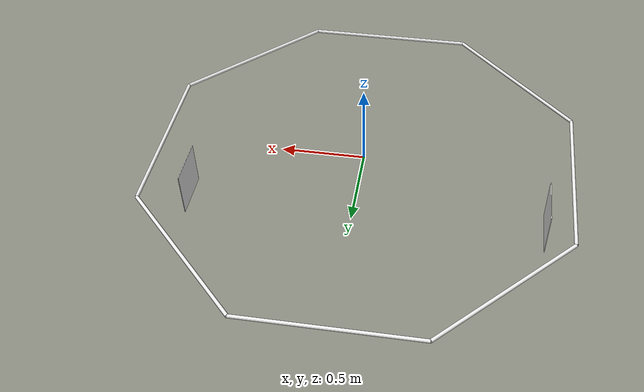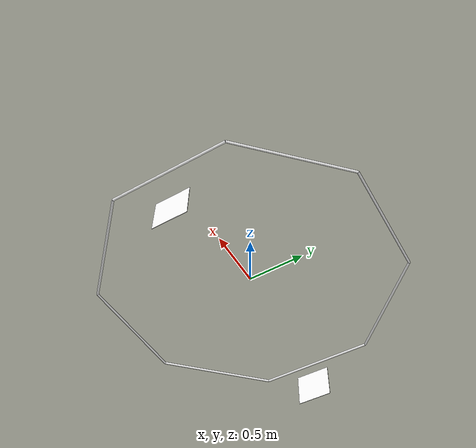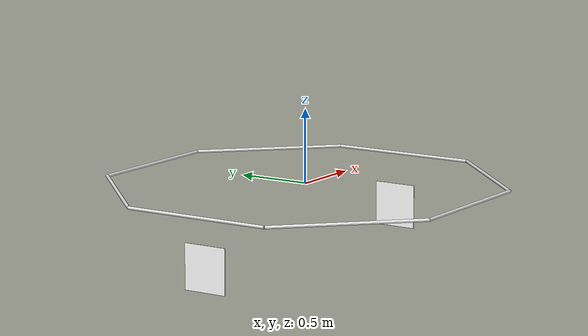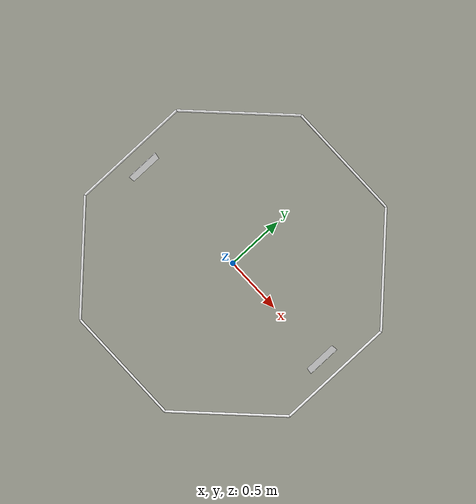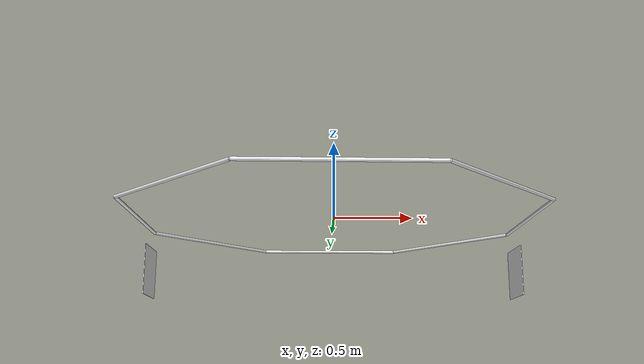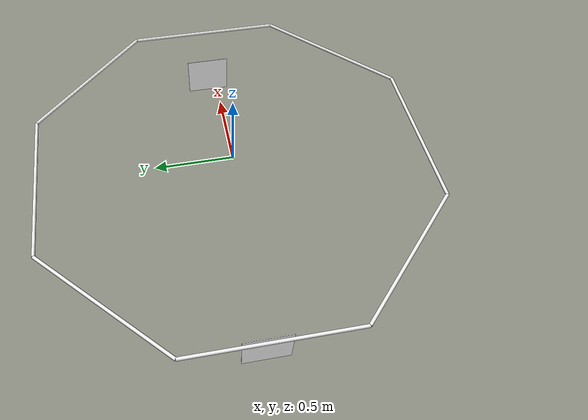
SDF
<?xml version="1.0"?>
<sdf version="1.9">
  <model name="robosub_octagon">
    <static>true</static>
    <plugin filename="gz-sim-label-system" name="gz::sim::systems::Label">
      <label>17</label>
    </plugin>
    <link name="side_0">
      <pose>1.24724 0 0 0 1.5708 1.5708</pose>
      <inertial>
        <pose>0 0 0 0 0 0</pose>
        <mass>1</mass>
        <inertia>
          <ixx>0.0889939</ixx><ixy>0</ixy><ixz>0</ixz>
          <iyy>0.0889939</iyy><iyz>0</iyz>
          <izz>5.5125e-05</izz>
        </inertia>
      </inertial>
      <visual name="side_0_visual">
        <pose>0 0 0 0 0 0</pose>
        <geometry><cylinder><radius>0.0105</radius><length>1.03325</length></cylinder></geometry>
        <material>
          <ambient>0.92 0.92 0.92 1</ambient>
          <diffuse>0.92 0.92 0.92 1</diffuse>
          <specular>0.55 0.55 0.55 1</specular>
          <emissive>0.258 0.258 0.258 1</emissive>
          <pbr>
            <metal>
              <albedo_map>model://robosub_textures/rough_pvc.png</albedo_map>
              <metalness>0.0</metalness>
              <roughness_map>model://robosub_textures/rough_pvc.png</roughness_map>
              <normal_map>model://robosub_textures/norm_pvc.png</normal_map>
            </metal>
          </pbr>
        </material>
      </visual>
    </link>
    <link name="side_1">
      <pose>0.88193 0.88193 0 0 1.5708 2.35619</pose>
      <inertial>
        <pose>0 0 0 0 0 0</pose>
        <mass>1</mass>
        <inertia>
          <ixx>0.0889939</ixx><ixy>0</ixy><ixz>0</ixz>
          <iyy>0.0889939</iyy><iyz>0</iyz>
          <izz>5.5125e-05</izz>
        </inertia>
      </inertial>
      <visual name="side_1_visual">
        <pose>0 0 0 0 0 0</pose>
        <geometry><cylinder><radius>0.0105</radius><length>1.03325</length></cylinder></geometry>
        <material>
          <ambient>0.92 0.92 0.92 1</ambient>
          <diffuse>0.92 0.92 0.92 1</diffuse>
          <specular>0.55 0.55 0.55 1</specular>
          <emissive>0.258 0.258 0.258 1</emissive>
          <pbr>
            <metal>
              <albedo_map>model://robosub_textures/rough_pvc.png</albedo_map>
              <metalness>0.0</metalness>
              <roughness_map>model://robosub_textures/rough_pvc.png</roughness_map>
              <normal_map>model://robosub_textures/norm_pvc.png</normal_map>
            </metal>
          </pbr>
        </material>
      </visual>
    </link>
    <link name="side_2">
      <pose>7.63713e-17 1.24724 0 0 1.5708 3.14159</pose>
      <inertial>
        <pose>0 0 0 0 0 0</pose>
        <mass>1</mass>
        <inertia>
          <ixx>0.0889939</ixx><ixy>0</ixy><ixz>0</ixz>
          <iyy>0.0889939</iyy><iyz>0</iyz>
          <izz>5.5125e-05</izz>
        </inertia>
      </inertial>
      <visual name="side_2_visual">
        <pose>0 0 0 0 0 0</pose>
        <geometry><cylinder><radius>0.0105</radius><length>1.03325</length></cylinder></geometry>
        <material>
          <ambient>0.92 0.92 0.92 1</ambient>
          <diffuse>0.92 0.92 0.92 1</diffuse>
          <specular>0.55 0.55 0.55 1</specular>
          <emissive>0.258 0.258 0.258 1</emissive>
          <pbr>
            <metal>
              <albedo_map>model://robosub_textures/rough_pvc.png</albedo_map>
              <metalness>0.0</metalness>
              <roughness_map>model://robosub_textures/rough_pvc.png</roughness_map>
              <normal_map>model://robosub_textures/norm_pvc.png</normal_map>
            </metal>
          </pbr>
        </material>
      </visual>
    </link>
    <link name="side_3">
      <pose>-0.88193 0.88193 0 0 1.5708 3.92699</pose>
      <inertial>
        <pose>0 0 0 0 0 0</pose>
        <mass>1</mass>
        <inertia>
          <ixx>0.0889939</ixx><ixy>0</ixy><ixz>0</ixz>
          <iyy>0.0889939</iyy><iyz>0</iyz>
          <izz>5.5125e-05</izz>
        </inertia>
      </inertial>
      <visual name="side_3_visual">
        <pose>0 0 0 0 0 0</pose>
        <geometry><cylinder><radius>0.0105</radius><length>1.03325</length></cylinder></geometry>
        <material>
          <ambient>0.92 0.92 0.92 1</ambient>
          <diffuse>0.92 0.92 0.92 1</diffuse>
          <specular>0.55 0.55 0.55 1</specular>
          <emissive>0.258 0.258 0.258 1</emissive>
          <pbr>
            <metal>
              <albedo_map>model://robosub_textures/rough_pvc.png</albedo_map>
              <metalness>0.0</metalness>
              <roughness_map>model://robosub_textures/rough_pvc.png</roughness_map>
              <normal_map>model://robosub_textures/norm_pvc.png</normal_map>
            </metal>
          </pbr>
        </material>
      </visual>
    </link>
    <link name="side_4">
      <pose>-1.24724 1.52743e-16 0 0 1.5708 4.71239</pose>
      <inertial>
        <pose>0 0 0 0 0 0</pose>
        <mass>1</mass>
        <inertia>
          <ixx>0.0889939</ixx><ixy>0</ixy><ixz>0</ixz>
          <iyy>0.0889939</iyy><iyz>0</iyz>
          <izz>5.5125e-05</izz>
        </inertia>
      </inertial>
      <visual name="side_4_visual">
        <pose>0 0 0 0 0 0</pose>
        <geometry><cylinder><radius>0.0105</radius><length>1.03325</length></cylinder></geometry>
        <material>
          <ambient>0.92 0.92 0.92 1</ambient>
          <diffuse>0.92 0.92 0.92 1</diffuse>
          <specular>0.55 0.55 0.55 1</specular>
          <emissive>0.258 0.258 0.258 1</emissive>
          <pbr>
            <metal>
              <albedo_map>model://robosub_textures/rough_pvc.png</albedo_map>
              <metalness>0.0</metalness>
              <roughness_map>model://robosub_textures/rough_pvc.png</roughness_map>
              <normal_map>model://robosub_textures/norm_pvc.png</normal_map>
            </metal>
          </pbr>
        </material>
      </visual>
    </link>
    <link name="side_5">
      <pose>-0.88193 -0.88193 0 0 1.5708 5.49779</pose>
      <inertial>
        <pose>0 0 0 0 0 0</pose>
        <mass>1</mass>
        <inertia>
          <ixx>0.0889939</ixx><ixy>0</ixy><ixz>0</ixz>
          <iyy>0.0889939</iyy><iyz>0</iyz>
          <izz>5.5125e-05</izz>
        </inertia>
      </inertial>
      <visual name="side_5_visual">
        <pose>0 0 0 0 0 0</pose>
        <geometry><cylinder><radius>0.0105</radius><length>1.03325</length></cylinder></geometry>
        <material>
          <ambient>0.92 0.92 0.92 1</ambient>
          <diffuse>0.92 0.92 0.92 1</diffuse>
          <specular>0.55 0.55 0.55 1</specular>
          <emissive>0.258 0.258 0.258 1</emissive>
          <pbr>
            <metal>
              <albedo_map>model://robosub_textures/rough_pvc.png</albedo_map>
              <metalness>0.0</metalness>
              <roughness_map>model://robosub_textures/rough_pvc.png</roughness_map>
              <normal_map>model://robosub_textures/norm_pvc.png</normal_map>
            </metal>
          </pbr>
        </material>
      </visual>
    </link>
    <link name="side_6">
      <pose>-2.29114e-16 -1.24724 0 0 1.5708 6.28319</pose>
      <inertial>
        <pose>0 0 0 0 0 0</pose>
        <mass>1</mass>
        <inertia>
          <ixx>0.0889939</ixx><ixy>0</ixy><ixz>0</ixz>
          <iyy>0.0889939</iyy><iyz>0</iyz>
          <izz>5.5125e-05</izz>
        </inertia>
      </inertial>
      <visual name="side_6_visual">
        <pose>0 0 0 0 0 0</pose>
        <geometry><cylinder><radius>0.0105</radius><length>1.03325</length></cylinder></geometry>
        <material>
          <ambient>0.92 0.92 0.92 1</ambient>
          <diffuse>0.92 0.92 0.92 1</diffuse>
          <specular>0.55 0.55 0.55 1</specular>
          <emissive>0.258 0.258 0.258 1</emissive>
          <pbr>
            <metal>
              <albedo_map>model://robosub_textures/rough_pvc.png</albedo_map>
              <metalness>0.0</metalness>
              <roughness_map>model://robosub_textures/rough_pvc.png</roughness_map>
              <normal_map>model://robosub_textures/norm_pvc.png</normal_map>
            </metal>
          </pbr>
        </material>
      </visual>
    </link>
    <link name="side_7">
      <pose>0.88193 -0.88193 0 0 1.5708 7.06858</pose>
      <inertial>
        <pose>0 0 0 0 0 0</pose>
        <mass>1</mass>
        <inertia>
          <ixx>0.0889939</ixx><ixy>0</ixy><ixz>0</ixz>
          <iyy>0.0889939</iyy><iyz>0</iyz>
          <izz>5.5125e-05</izz>
        </inertia>
      </inertial>
      <visual name="side_7_visual">
        <pose>0 0 0 0 0 0</pose>
        <geometry><cylinder><radius>0.0105</radius><length>1.03325</length></cylinder></geometry>
        <material>
          <ambient>0.92 0.92 0.92 1</ambient>
          <diffuse>0.92 0.92 0.92 1</diffuse>
          <specular>0.55 0.55 0.55 1</specular>
          <emissive>0.258 0.258 0.258 1</emissive>
          <pbr>
            <metal>
              <albedo_map>model://robosub_textures/rough_pvc.png</albedo_map>
              <metalness>0.0</metalness>
              <roughness_map>model://robosub_textures/rough_pvc.png</roughness_map>
              <normal_map>model://robosub_textures/norm_pvc.png</normal_map>
            </metal>
          </pbr>
        </material>
      </visual>
    </link>
    <link name="role_sign_0">
      <pose>1.14724 0 -0.35 0 0 3.14159</pose>
      <inertial>
        <pose>0 0 0 0 0 0</pose>
        <mass>0.05</mass>
        <inertia>
          <ixx>0.000775208</ixx><ixy>0</ixy><ixz>0</ixz>
          <iyy>0.000387671</iyy><iyz>0</iyz>
          <izz>0.000387671</izz>
        </inertia>
      </inertial>
      <visual name="role_sign_0_visual">
        <pose>0 0 0 0 0 0</pose>
        <geometry><box><size>0.004 0.305 0.305</size></box></geometry>
        <material>
          <ambient>1 1 1 1</ambient>
          <diffuse>1 1 1 1</diffuse>
          <specular>0.06 0.06 0.06 1</specular>
          <emissive>0.1 0.1 0.1 1</emissive>
          <pbr>
            <metal>
              <albedo_map>model://robosub_textures/role_hammer_pick.png</albedo_map>
              <metalness>0.0</metalness>
              <roughness>0.55</roughness>
            </metal>
          </pbr>
        </material>
      </visual>
    </link>
    <link name="role_sign_1">
      <pose>-1.14724 1.40496e-16 -0.35 0 0 6.28319</pose>
      <inertial>
        <pose>0 0 0 0 0 0</pose>
        <mass>0.05</mass>
        <inertia>
          <ixx>0.000775208</ixx><ixy>0</ixy><ixz>0</ixz>
          <iyy>0.000387671</iyy><iyz>0</iyz>
          <izz>0.000387671</izz>
        </inertia>
      </inertial>
      <visual name="role_sign_1_visual">
        <pose>0 0 0 0 0 0</pose>
        <geometry><box><size>0.004 0.305 0.305</size></box></geometry>
        <material>
          <ambient>1 1 1 1</ambient>
          <diffuse>1 1 1 1</diffuse>
          <specular>0.06 0.06 0.06 1</specular>
          <emissive>0.1 0.1 0.1 1</emissive>
          <pbr>
            <metal>
              <albedo_map>model://robosub_textures/role_ring_buoy.png</albedo_map>
              <metalness>0.0</metalness>
              <roughness>0.55</roughness>
            </metal>
          </pbr>
        </material>
      </visual>
    </link>
  </model>
</sdf>
